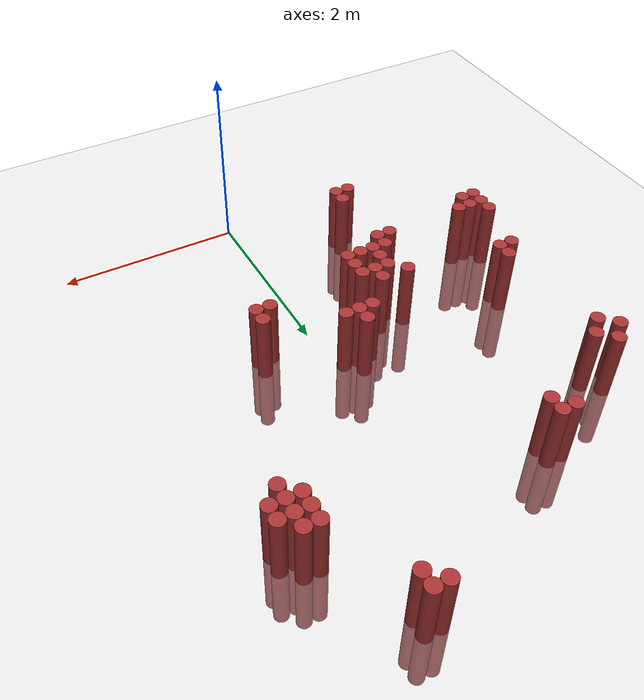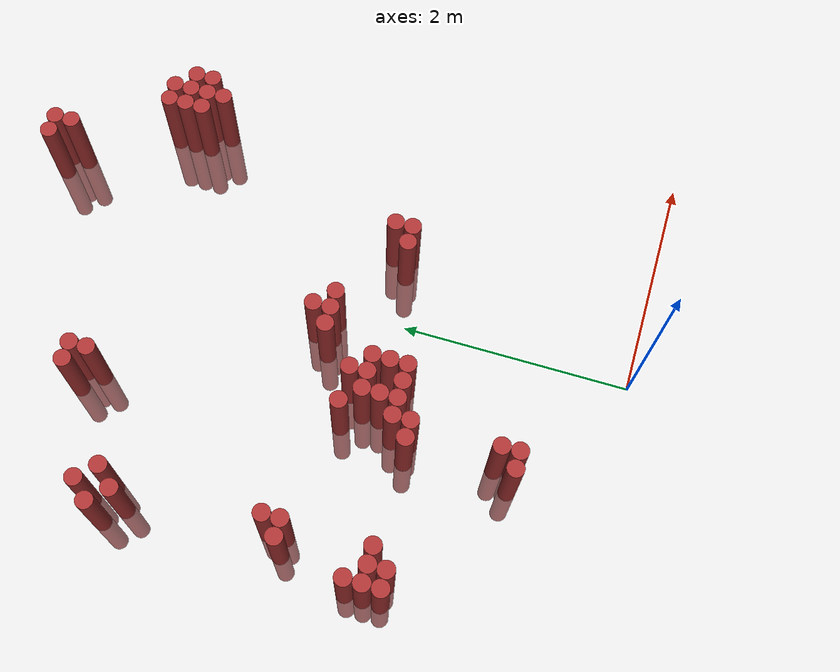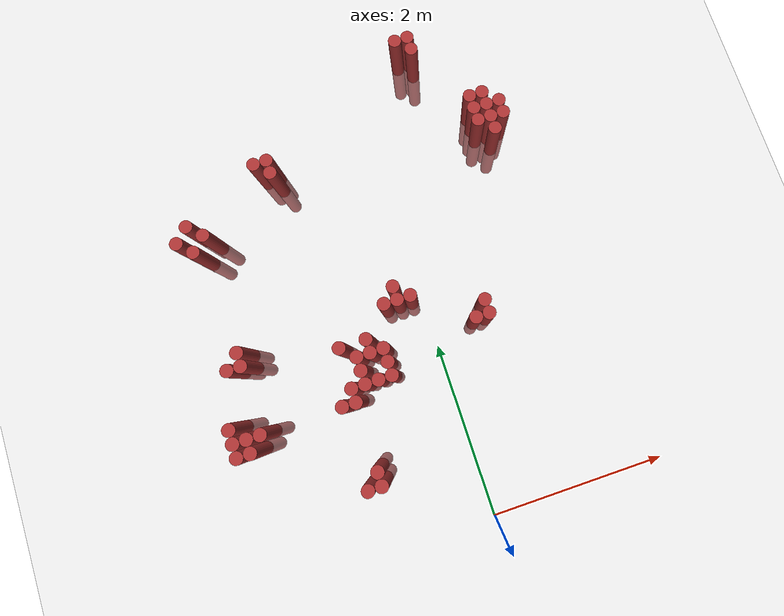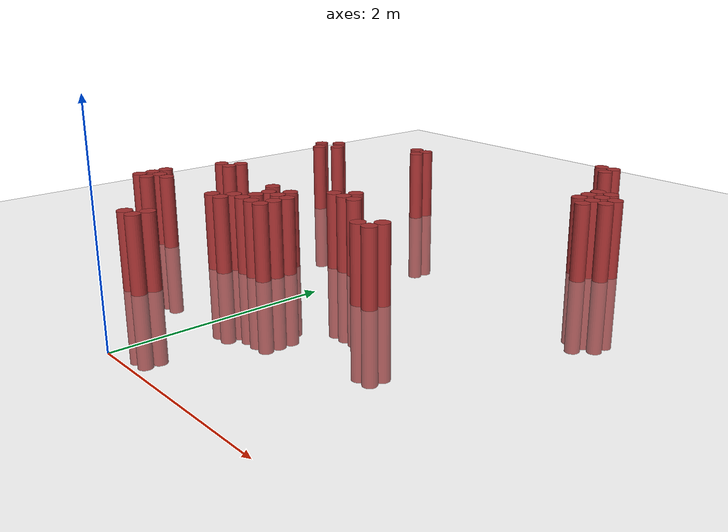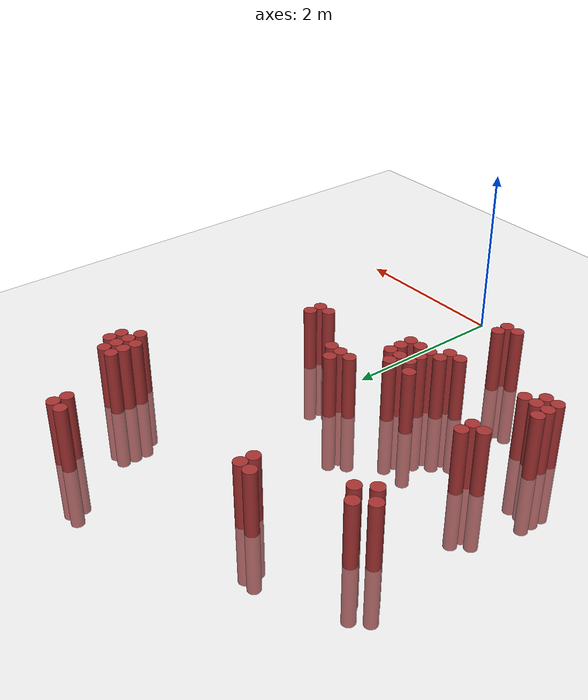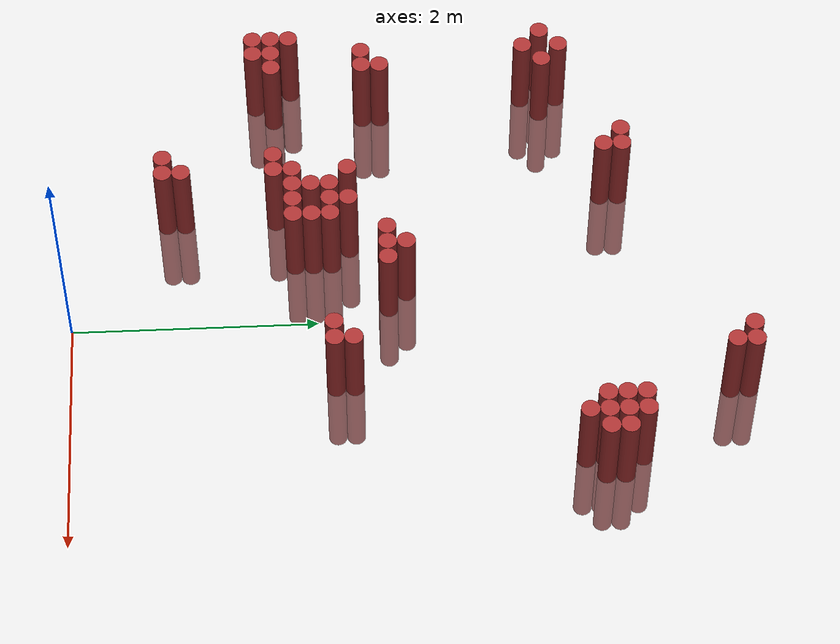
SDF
<sdf version="1.6">
 <world name="default">
  <model name="ground_plane">
   <static>1</static>
   <link name="link">
    <collision name="collision">
     <geometry><plane><normal>0 0 1</normal><size>100 100</size></plane></geometry>
     <surface><friction><ode><mu>100</mu><mu2>50</mu2></ode></friction></surface>
    </collision>
    <visual name="visual">
     <cast_shadows>0</cast_shadows>
     <geometry><plane><normal>0 0 1</normal><size>100 100</size></plane></geometry>
     <material>
      <script><uri>file://media/materials/scripts/gazebo.material</uri><name>Gazebo/Grey</name></script>
     </material>
    </visual>
   </link>
  </model>
  <model name="unit_cylinder_301">
   <static>1</static>
   <pose>-2.375000 1.525000 0.000000 0.000000 0.000000 0.000000</pose>
   <link name="link">
    <inertial>
     <mass>1</mass>
     <inertia><ixx>0.145833</ixx><ixy>0</ixy><ixz>0</ixz><iyy>0.145833</iyy><iyz>0</iyz><izz>0.125</izz></inertia>
    </inertial>
    <collision name="collision">
     <geometry><cylinder><radius>0.075000</radius><length>1.5</length></cylinder></geometry>
    </collision>
    <visual name="visual">
     <geometry><cylinder><radius>0.075000</radius><length>1.5</length></cylinder></geometry>
     <material>
      <ambient>0.648000 0.192000 0.192000 1</ambient>
      <diffuse>0.648000 0.192000 0.192000 1</diffuse>
     </material>
     <material>
      <script><name>Gazebo/Grey</name><uri>file://media/materials/scripts/gazebo.material</uri></script>
     </material>
    </visual>
   </link>
  </model>
  <model name="unit_cylinder_302">
   <static>1</static>
   <pose>-2.375000 1.675000 0.000000 0.000000 0.000000 0.000000</pose>
   <link name="link">
    <inertial>
     <mass>1</mass>
     <inertia><ixx>0.145833</ixx><ixy>0</ixy><ixz>0</ixz><iyy>0.145833</iyy><iyz>0</iyz><izz>0.125</izz></inertia>
    </inertial>
    <collision name="collision">
     <geometry><cylinder><radius>0.075000</radius><length>1.5</length></cylinder></geometry>
    </collision>
    <visual name="visual">
     <geometry><cylinder><radius>0.075000</radius><length>1.5</length></cylinder></geometry>
     <material>
      <ambient>0.648000 0.192000 0.192000 1</ambient>
      <diffuse>0.648000 0.192000 0.192000 1</diffuse>
     </material>
     <material>
      <script><name>Gazebo/Grey</name><uri>file://media/materials/scripts/gazebo.material</uri></script>
     </material>
    </visual>
   </link>
  </model>
  <model name="unit_cylinder_303">
   <static>1</static>
   <pose>-2.375000 1.825000 0.000000 0.000000 0.000000 0.000000</pose>
   <link name="link">
    <inertial>
     <mass>1</mass>
     <inertia><ixx>0.145833</ixx><ixy>0</ixy><ixz>0</ixz><iyy>0.145833</iyy><iyz>0</iyz><izz>0.125</izz></inertia>
    </inertial>
    <collision name="collision">
     <geometry><cylinder><radius>0.075000</radius><length>1.5</length></cylinder></geometry>
    </collision>
    <visual name="visual">
     <geometry><cylinder><radius>0.075000</radius><length>1.5</length></cylinder></geometry>
     <material>
      <ambient>0.648000 0.192000 0.192000 1</ambient>
      <diffuse>0.648000 0.192000 0.192000 1</diffuse>
     </material>
     <material>
      <script><name>Gazebo/Grey</name><uri>file://media/materials/scripts/gazebo.material</uri></script>
     </material>
    </visual>
   </link>
  </model>
  <model name="unit_cylinder_304">
   <static>1</static>
   <pose>-2.375000 3.925000 0.000000 0.000000 0.000000 0.000000</pose>
   <link name="link">
    <inertial>
     <mass>1</mass>
     <inertia><ixx>0.145833</ixx><ixy>0</ixy><ixz>0</ixz><iyy>0.145833</iyy><iyz>0</iyz><izz>0.125</izz></inertia>
    </inertial>
    <collision name="collision">
     <geometry><cylinder><radius>0.075000</radius><length>1.5</length></cylinder></geometry>
    </collision>
    <visual name="visual">
     <geometry><cylinder><radius>0.075000</radius><length>1.5</length></cylinder></geometry>
     <material>
      <ambient>0.648000 0.192000 0.192000 1</ambient>
      <diffuse>0.648000 0.192000 0.192000 1</diffuse>
     </material>
     <material>
      <script><name>Gazebo/Grey</name><uri>file://media/materials/scripts/gazebo.material</uri></script>
     </material>
    </visual>
   </link>
  </model>
  <model name="unit_cylinder_307">
   <static>1</static>
   <pose>-2.225000 1.525000 0.000000 0.000000 0.000000 0.000000</pose>
   <link name="link">
    <inertial>
     <mass>1</mass>
     <inertia><ixx>0.145833</ixx><ixy>0</ixy><ixz>0</ixz><iyy>0.145833</iyy><iyz>0</iyz><izz>0.125</izz></inertia>
    </inertial>
    <collision name="collision">
     <geometry><cylinder><radius>0.075000</radius><length>1.5</length></cylinder></geometry>
    </collision>
    <visual name="visual">
     <geometry><cylinder><radius>0.075000</radius><length>1.5</length></cylinder></geometry>
     <material>
      <ambient>0.648000 0.192000 0.192000 1</ambient>
      <diffuse>0.648000 0.192000 0.192000 1</diffuse>
     </material>
     <material>
      <script><name>Gazebo/Grey</name><uri>file://media/materials/scripts/gazebo.material</uri></script>
     </material>
    </visual>
   </link>
  </model>
  <model name="unit_cylinder_308">
   <static>1</static>
   <pose>-2.225000 1.675000 0.000000 0.000000 0.000000 0.000000</pose>
   <link name="link">
    <inertial>
     <mass>1</mass>
     <inertia><ixx>0.145833</ixx><ixy>0</ixy><ixz>0</ixz><iyy>0.145833</iyy><iyz>0</iyz><izz>0.125</izz></inertia>
    </inertial>
    <collision name="collision">
     <geometry><cylinder><radius>0.075000</radius><length>1.5</length></cylinder></geometry>
    </collision>
    <visual name="visual">
     <geometry><cylinder><radius>0.075000</radius><length>1.5</length></cylinder></geometry>
     <material>
      <ambient>0.648000 0.192000 0.192000 1</ambient>
      <diffuse>0.648000 0.192000 0.192000 1</diffuse>
     </material>
     <material>
      <script><name>Gazebo/Grey</name><uri>file://media/materials/scripts/gazebo.material</uri></script>
     </material>
    </visual>
   </link>
  </model>
  <model name="unit_cylinder_309">
   <static>1</static>
   <pose>-2.225000 2.425000 0.000000 0.000000 0.000000 0.000000</pose>
   <link name="link">
    <inertial>
     <mass>1</mass>
     <inertia><ixx>0.145833</ixx><ixy>0</ixy><ixz>0</ixz><iyy>0.145833</iyy><iyz>0</iyz><izz>0.125</izz></inertia>
    </inertial>
    <collision name="collision">
     <geometry><cylinder><radius>0.075000</radius><length>1.5</length></cylinder></geometry>
    </collision>
    <visual name="visual">
     <geometry><cylinder><radius>0.075000</radius><length>1.5</length></cylinder></geometry>
     <material>
      <ambient>0.648000 0.192000 0.192000 1</ambient>
      <diffuse>0.648000 0.192000 0.192000 1</diffuse>
     </material>
     <material>
      <script><name>Gazebo/Grey</name><uri>file://media/materials/scripts/gazebo.material</uri></script>
     </material>
    </visual>
   </link>
  </model>
  <model name="unit_cylinder_310">
   <static>1</static>
   <pose>-2.225000 3.775000 0.000000 0.000000 0.000000 0.000000</pose>
   <link name="link">
    <inertial>
     <mass>1</mass>
     <inertia><ixx>0.145833</ixx><ixy>0</ixy><ixz>0</ixz><iyy>0.145833</iyy><iyz>0</iyz><izz>0.125</izz></inertia>
    </inertial>
    <collision name="collision">
     <geometry><cylinder><radius>0.075000</radius><length>1.5</length></cylinder></geometry>
    </collision>
    <visual name="visual">
     <geometry><cylinder><radius>0.075000</radius><length>1.5</length></cylinder></geometry>
     <material>
      <ambient>0.648000 0.192000 0.192000 1</ambient>
      <diffuse>0.648000 0.192000 0.192000 1</diffuse>
     </material>
     <material>
      <script><name>Gazebo/Grey</name><uri>file://media/materials/scripts/gazebo.material</uri></script>
     </material>
    </visual>
   </link>
  </model>
  <model name="unit_cylinder_311">
   <static>1</static>
   <pose>-2.225000 4.075000 0.000000 0.000000 0.000000 0.000000</pose>
   <link name="link">
    <inertial>
     <mass>1</mass>
     <inertia><ixx>0.145833</ixx><ixy>0</ixy><ixz>0</ixz><iyy>0.145833</iyy><iyz>0</iyz><izz>0.125</izz></inertia>
    </inertial>
    <collision name="collision">
     <geometry><cylinder><radius>0.075000</radius><length>1.5</length></cylinder></geometry>
    </collision>
    <visual name="visual">
     <geometry><cylinder><radius>0.075000</radius><length>1.5</length></cylinder></geometry>
     <material>
      <ambient>0.648000 0.192000 0.192000 1</ambient>
      <diffuse>0.648000 0.192000 0.192000 1</diffuse>
     </material>
     <material>
      <script><name>Gazebo/Grey</name><uri>file://media/materials/scripts/gazebo.material</uri></script>
     </material>
    </visual>
   </link>
  </model>
  <model name="unit_cylinder_316">
   <static>1</static>
   <pose>-2.075000 1.675000 0.000000 0.000000 0.000000 0.000000</pose>
   <link name="link">
    <inertial>
     <mass>1</mass>
     <inertia><ixx>0.145833</ixx><ixy>0</ixy><ixz>0</ixz><iyy>0.145833</iyy><iyz>0</iyz><izz>0.125</izz></inertia>
    </inertial>
    <collision name="collision">
     <geometry><cylinder><radius>0.075000</radius><length>1.5</length></cylinder></geometry>
    </collision>
    <visual name="visual">
     <geometry><cylinder><radius>0.075000</radius><length>1.5</length></cylinder></geometry>
     <material>
      <ambient>0.648000 0.192000 0.192000 1</ambient>
      <diffuse>0.648000 0.192000 0.192000 1</diffuse>
     </material>
     <material>
      <script><name>Gazebo/Grey</name><uri>file://media/materials/scripts/gazebo.material</uri></script>
     </material>
    </visual>
   </link>
  </model>
  <model name="unit_cylinder_317">
   <static>1</static>
   <pose>-2.075000 2.425000 0.000000 0.000000 0.000000 0.000000</pose>
   <link name="link">
    <inertial>
     <mass>1</mass>
     <inertia><ixx>0.145833</ixx><ixy>0</ixy><ixz>0</ixz><iyy>0.145833</iyy><iyz>0</iyz><izz>0.125</izz></inertia>
    </inertial>
    <collision name="collision">
     <geometry><cylinder><radius>0.075000</radius><length>1.5</length></cylinder></geometry>
    </collision>
    <visual name="visual">
     <geometry><cylinder><radius>0.075000</radius><length>1.5</length></cylinder></geometry>
     <material>
      <ambient>0.648000 0.192000 0.192000 1</ambient>
      <diffuse>0.648000 0.192000 0.192000 1</diffuse>
     </material>
     <material>
      <script><name>Gazebo/Grey</name><uri>file://media/materials/scripts/gazebo.material</uri></script>
     </material>
    </visual>
   </link>
  </model>
  <model name="unit_cylinder_318">
   <static>1</static>
   <pose>-2.075000 2.575000 0.000000 0.000000 0.000000 0.000000</pose>
   <link name="link">
    <inertial>
     <mass>1</mass>
     <inertia><ixx>0.145833</ixx><ixy>0</ixy><ixz>0</ixz><iyy>0.145833</iyy><iyz>0</iyz><izz>0.125</izz></inertia>
    </inertial>
    <collision name="collision">
     <geometry><cylinder><radius>0.075000</radius><length>1.5</length></cylinder></geometry>
    </collision>
    <visual name="visual">
     <geometry><cylinder><radius>0.075000</radius><length>1.5</length></cylinder></geometry>
     <material>
      <ambient>0.648000 0.192000 0.192000 1</ambient>
      <diffuse>0.648000 0.192000 0.192000 1</diffuse>
     </material>
     <material>
      <script><name>Gazebo/Grey</name><uri>file://media/materials/scripts/gazebo.material</uri></script>
     </material>
    </visual>
   </link>
  </model>
  <model name="unit_cylinder_319">
   <static>1</static>
   <pose>-2.075000 3.925000 0.000000 0.000000 0.000000 0.000000</pose>
   <link name="link">
    <inertial>
     <mass>1</mass>
     <inertia><ixx>0.145833</ixx><ixy>0</ixy><ixz>0</ixz><iyy>0.145833</iyy><iyz>0</iyz><izz>0.125</izz></inertia>
    </inertial>
    <collision name="collision">
     <geometry><cylinder><radius>0.075000</radius><length>1.5</length></cylinder></geometry>
    </collision>
    <visual name="visual">
     <geometry><cylinder><radius>0.075000</radius><length>1.5</length></cylinder></geometry>
     <material>
      <ambient>0.648000 0.192000 0.192000 1</ambient>
      <diffuse>0.648000 0.192000 0.192000 1</diffuse>
     </material>
     <material>
      <script><name>Gazebo/Grey</name><uri>file://media/materials/scripts/gazebo.material</uri></script>
     </material>
    </visual>
   </link>
  </model>
  <model name="unit_cylinder_342">
   <static>1</static>
   <pose>-1.325000 4.525000 0.000000 0.000000 0.000000 0.000000</pose>
   <link name="link">
    <inertial>
     <mass>1</mass>
     <inertia><ixx>0.145833</ixx><ixy>0</ixy><ixz>0</ixz><iyy>0.145833</iyy><iyz>0</iyz><izz>0.125</izz></inertia>
    </inertial>
    <collision name="collision">
     <geometry><cylinder><radius>0.075000</radius><length>1.5</length></cylinder></geometry>
    </collision>
    <visual name="visual">
     <geometry><cylinder><radius>0.075000</radius><length>1.5</length></cylinder></geometry>
     <material>
      <ambient>0.648000 0.192000 0.192000 1</ambient>
      <diffuse>0.648000 0.192000 0.192000 1</diffuse>
     </material>
     <material>
      <script><name>Gazebo/Grey</name><uri>file://media/materials/scripts/gazebo.material</uri></script>
     </material>
    </visual>
   </link>
  </model>
  <model name="unit_cylinder_350">
   <static>1</static>
   <pose>-1.175000 0.775000 0.000000 0.000000 0.000000 0.000000</pose>
   <link name="link">
    <inertial>
     <mass>1</mass>
     <inertia><ixx>0.145833</ixx><ixy>0</ixy><ixz>0</ixz><iyy>0.145833</iyy><iyz>0</iyz><izz>0.125</izz></inertia>
    </inertial>
    <collision name="collision">
     <geometry><cylinder><radius>0.075000</radius><length>1.5</length></cylinder></geometry>
    </collision>
    <visual name="visual">
     <geometry><cylinder><radius>0.075000</radius><length>1.5</length></cylinder></geometry>
     <material>
      <ambient>0.648000 0.192000 0.192000 1</ambient>
      <diffuse>0.648000 0.192000 0.192000 1</diffuse>
     </material>
     <material>
      <script><name>Gazebo/Grey</name><uri>file://media/materials/scripts/gazebo.material</uri></script>
     </material>
    </visual>
   </link>
  </model>
  <model name="unit_cylinder_351">
   <static>1</static>
   <pose>-1.175000 1.675000 0.000000 0.000000 0.000000 0.000000</pose>
   <link name="link">
    <inertial>
     <mass>1</mass>
     <inertia><ixx>0.145833</ixx><ixy>0</ixy><ixz>0</ixz><iyy>0.145833</iyy><iyz>0</iyz><izz>0.125</izz></inertia>
    </inertial>
    <collision name="collision">
     <geometry><cylinder><radius>0.075000</radius><length>1.5</length></cylinder></geometry>
    </collision>
    <visual name="visual">
     <geometry><cylinder><radius>0.075000</radius><length>1.5</length></cylinder></geometry>
     <material>
      <ambient>0.648000 0.192000 0.192000 1</ambient>
      <diffuse>0.648000 0.192000 0.192000 1</diffuse>
     </material>
     <material>
      <script><name>Gazebo/Grey</name><uri>file://media/materials/scripts/gazebo.material</uri></script>
     </material>
    </visual>
   </link>
  </model>
  <model name="unit_cylinder_352">
   <static>1</static>
   <pose>-1.175000 4.375000 0.000000 0.000000 0.000000 0.000000</pose>
   <link name="link">
    <inertial>
     <mass>1</mass>
     <inertia><ixx>0.145833</ixx><ixy>0</ixy><ixz>0</ixz><iyy>0.145833</iyy><iyz>0</iyz><izz>0.125</izz></inertia>
    </inertial>
    <collision name="collision">
     <geometry><cylinder><radius>0.075000</radius><length>1.5</length></cylinder></geometry>
    </collision>
    <visual name="visual">
     <geometry><cylinder><radius>0.075000</radius><length>1.5</length></cylinder></geometry>
     <material>
      <ambient>0.648000 0.192000 0.192000 1</ambient>
      <diffuse>0.648000 0.192000 0.192000 1</diffuse>
     </material>
     <material>
      <script><name>Gazebo/Grey</name><uri>file://media/materials/scripts/gazebo.material</uri></script>
     </material>
    </visual>
   </link>
  </model>
  <model name="unit_cylinder_353">
   <static>1</static>
   <pose>-1.175000 4.525000 0.000000 0.000000 0.000000 0.000000</pose>
   <link name="link">
    <inertial>
     <mass>1</mass>
     <inertia><ixx>0.145833</ixx><ixy>0</ixy><ixz>0</ixz><iyy>0.145833</iyy><iyz>0</iyz><izz>0.125</izz></inertia>
    </inertial>
    <collision name="collision">
     <geometry><cylinder><radius>0.075000</radius><length>1.5</length></cylinder></geometry>
    </collision>
    <visual name="visual">
     <geometry><cylinder><radius>0.075000</radius><length>1.5</length></cylinder></geometry>
     <material>
      <ambient>0.648000 0.192000 0.192000 1</ambient>
      <diffuse>0.648000 0.192000 0.192000 1</diffuse>
     </material>
     <material>
      <script><name>Gazebo/Grey</name><uri>file://media/materials/scripts/gazebo.material</uri></script>
     </material>
    </visual>
   </link>
  </model>
  <model name="unit_cylinder_358">
   <static>1</static>
   <pose>-1.025000 0.775000 0.000000 0.000000 0.000000 0.000000</pose>
   <link name="link">
    <inertial>
     <mass>1</mass>
     <inertia><ixx>0.145833</ixx><ixy>0</ixy><ixz>0</ixz><iyy>0.145833</iyy><iyz>0</iyz><izz>0.125</izz></inertia>
    </inertial>
    <collision name="collision">
     <geometry><cylinder><radius>0.075000</radius><length>1.5</length></cylinder></geometry>
    </collision>
    <visual name="visual">
     <geometry><cylinder><radius>0.075000</radius><length>1.5</length></cylinder></geometry>
     <material>
      <ambient>0.648000 0.192000 0.192000 1</ambient>
      <diffuse>0.648000 0.192000 0.192000 1</diffuse>
     </material>
     <material>
      <script><name>Gazebo/Grey</name><uri>file://media/materials/scripts/gazebo.material</uri></script>
     </material>
    </visual>
   </link>
  </model>
  <model name="unit_cylinder_359">
   <static>1</static>
   <pose>-1.025000 0.925000 0.000000 0.000000 0.000000 0.000000</pose>
   <link name="link">
    <inertial>
     <mass>1</mass>
     <inertia><ixx>0.145833</ixx><ixy>0</ixy><ixz>0</ixz><iyy>0.145833</iyy><iyz>0</iyz><izz>0.125</izz></inertia>
    </inertial>
    <collision name="collision">
     <geometry><cylinder><radius>0.075000</radius><length>1.5</length></cylinder></geometry>
    </collision>
    <visual name="visual">
     <geometry><cylinder><radius>0.075000</radius><length>1.5</length></cylinder></geometry>
     <material>
      <ambient>0.648000 0.192000 0.192000 1</ambient>
      <diffuse>0.648000 0.192000 0.192000 1</diffuse>
     </material>
     <material>
      <script><name>Gazebo/Grey</name><uri>file://media/materials/scripts/gazebo.material</uri></script>
     </material>
    </visual>
   </link>
  </model>
  <model name="unit_cylinder_360">
   <static>1</static>
   <pose>-1.025000 1.675000 0.000000 0.000000 0.000000 0.000000</pose>
   <link name="link">
    <inertial>
     <mass>1</mass>
     <inertia><ixx>0.145833</ixx><ixy>0</ixy><ixz>0</ixz><iyy>0.145833</iyy><iyz>0</iyz><izz>0.125</izz></inertia>
    </inertial>
    <collision name="collision">
     <geometry><cylinder><radius>0.075000</radius><length>1.5</length></cylinder></geometry>
    </collision>
    <visual name="visual">
     <geometry><cylinder><radius>0.075000</radius><length>1.5</length></cylinder></geometry>
     <material>
      <ambient>0.648000 0.192000 0.192000 1</ambient>
      <diffuse>0.648000 0.192000 0.192000 1</diffuse>
     </material>
     <material>
      <script><name>Gazebo/Grey</name><uri>file://media/materials/scripts/gazebo.material</uri></script>
     </material>
    </visual>
   </link>
  </model>
  <model name="unit_cylinder_361">
   <static>1</static>
   <pose>-1.025000 1.825000 0.000000 0.000000 0.000000 0.000000</pose>
   <link name="link">
    <inertial>
     <mass>1</mass>
     <inertia><ixx>0.145833</ixx><ixy>0</ixy><ixz>0</ixz><iyy>0.145833</iyy><iyz>0</iyz><izz>0.125</izz></inertia>
    </inertial>
    <collision name="collision">
     <geometry><cylinder><radius>0.075000</radius><length>1.5</length></cylinder></geometry>
    </collision>
    <visual name="visual">
     <geometry><cylinder><radius>0.075000</radius><length>1.5</length></cylinder></geometry>
     <material>
      <ambient>0.648000 0.192000 0.192000 1</ambient>
      <diffuse>0.648000 0.192000 0.192000 1</diffuse>
     </material>
     <material>
      <script><name>Gazebo/Grey</name><uri>file://media/materials/scripts/gazebo.material</uri></script>
     </material>
    </visual>
   </link>
  </model>
  <model name="unit_cylinder_362">
   <static>1</static>
   <pose>-1.025000 2.275000 0.000000 0.000000 0.000000 0.000000</pose>
   <link name="link">
    <inertial>
     <mass>1</mass>
     <inertia><ixx>0.145833</ixx><ixy>0</ixy><ixz>0</ixz><iyy>0.145833</iyy><iyz>0</iyz><izz>0.125</izz></inertia>
    </inertial>
    <collision name="collision">
     <geometry><cylinder><radius>0.075000</radius><length>1.5</length></cylinder></geometry>
    </collision>
    <visual name="visual">
     <geometry><cylinder><radius>0.075000</radius><length>1.5</length></cylinder></geometry>
     <material>
      <ambient>0.648000 0.192000 0.192000 1</ambient>
      <diffuse>0.648000 0.192000 0.192000 1</diffuse>
     </material>
     <material>
      <script><name>Gazebo/Grey</name><uri>file://media/materials/scripts/gazebo.material</uri></script>
     </material>
    </visual>
   </link>
  </model>
  <model name="unit_cylinder_366">
   <static>1</static>
   <pose>-0.875000 1.825000 0.000000 0.000000 0.000000 0.000000</pose>
   <link name="link">
    <inertial>
     <mass>1</mass>
     <inertia><ixx>0.145833</ixx><ixy>0</ixy><ixz>0</ixz><iyy>0.145833</iyy><iyz>0</iyz><izz>0.125</izz></inertia>
    </inertial>
    <collision name="collision">
     <geometry><cylinder><radius>0.075000</radius><length>1.5</length></cylinder></geometry>
    </collision>
    <visual name="visual">
     <geometry><cylinder><radius>0.075000</radius><length>1.5</length></cylinder></geometry>
     <material>
      <ambient>0.648000 0.192000 0.192000 1</ambient>
      <diffuse>0.648000 0.192000 0.192000 1</diffuse>
     </material>
     <material>
      <script><name>Gazebo/Grey</name><uri>file://media/materials/scripts/gazebo.material</uri></script>
     </material>
    </visual>
   </link>
  </model>
  <model name="unit_cylinder_367">
   <static>1</static>
   <pose>-0.875000 1.975000 0.000000 0.000000 0.000000 0.000000</pose>
   <link name="link">
    <inertial>
     <mass>1</mass>
     <inertia><ixx>0.145833</ixx><ixy>0</ixy><ixz>0</ixz><iyy>0.145833</iyy><iyz>0</iyz><izz>0.125</izz></inertia>
    </inertial>
    <collision name="collision">
     <geometry><cylinder><radius>0.075000</radius><length>1.5</length></cylinder></geometry>
    </collision>
    <visual name="visual">
     <geometry><cylinder><radius>0.075000</radius><length>1.5</length></cylinder></geometry>
     <material>
      <ambient>0.648000 0.192000 0.192000 1</ambient>
      <diffuse>0.648000 0.192000 0.192000 1</diffuse>
     </material>
     <material>
      <script><name>Gazebo/Grey</name><uri>file://media/materials/scripts/gazebo.material</uri></script>
     </material>
    </visual>
   </link>
  </model>
  <model name="unit_cylinder_368">
   <static>1</static>
   <pose>-0.875000 2.125000 0.000000 0.000000 0.000000 0.000000</pose>
   <link name="link">
    <inertial>
     <mass>1</mass>
     <inertia><ixx>0.145833</ixx><ixy>0</ixy><ixz>0</ixz><iyy>0.145833</iyy><iyz>0</iyz><izz>0.125</izz></inertia>
    </inertial>
    <collision name="collision">
     <geometry><cylinder><radius>0.075000</radius><length>1.5</length></cylinder></geometry>
    </collision>
    <visual name="visual">
     <geometry><cylinder><radius>0.075000</radius><length>1.5</length></cylinder></geometry>
     <material>
      <ambient>0.648000 0.192000 0.192000 1</ambient>
      <diffuse>0.648000 0.192000 0.192000 1</diffuse>
     </material>
     <material>
      <script><name>Gazebo/Grey</name><uri>file://media/materials/scripts/gazebo.material</uri></script>
     </material>
    </visual>
   </link>
  </model>
  <model name="unit_cylinder_370">
   <static>1</static>
   <pose>-0.725000 1.825000 0.000000 0.000000 0.000000 0.000000</pose>
   <link name="link">
    <inertial>
     <mass>1</mass>
     <inertia><ixx>0.145833</ixx><ixy>0</ixy><ixz>0</ixz><iyy>0.145833</iyy><iyz>0</iyz><izz>0.125</izz></inertia>
    </inertial>
    <collision name="collision">
     <geometry><cylinder><radius>0.075000</radius><length>1.5</length></cylinder></geometry>
    </collision>
    <visual name="visual">
     <geometry><cylinder><radius>0.075000</radius><length>1.5</length></cylinder></geometry>
     <material>
      <ambient>0.648000 0.192000 0.192000 1</ambient>
      <diffuse>0.648000 0.192000 0.192000 1</diffuse>
     </material>
     <material>
      <script><name>Gazebo/Grey</name><uri>file://media/materials/scripts/gazebo.material</uri></script>
     </material>
    </visual>
   </link>
  </model>
  <model name="unit_cylinder_371">
   <static>1</static>
   <pose>-0.725000 2.125000 0.000000 0.000000 0.000000 0.000000</pose>
   <link name="link">
    <inertial>
     <mass>1</mass>
     <inertia><ixx>0.145833</ixx><ixy>0</ixy><ixz>0</ixz><iyy>0.145833</iyy><iyz>0</iyz><izz>0.125</izz></inertia>
    </inertial>
    <collision name="collision">
     <geometry><cylinder><radius>0.075000</radius><length>1.5</length></cylinder></geometry>
    </collision>
    <visual name="visual">
     <geometry><cylinder><radius>0.075000</radius><length>1.5</length></cylinder></geometry>
     <material>
      <ambient>0.648000 0.192000 0.192000 1</ambient>
      <diffuse>0.648000 0.192000 0.192000 1</diffuse>
     </material>
     <material>
      <script><name>Gazebo/Grey</name><uri>file://media/materials/scripts/gazebo.material</uri></script>
     </material>
    </visual>
   </link>
  </model>
  <model name="unit_cylinder_372">
   <static>1</static>
   <pose>-0.725000 2.275000 0.000000 0.000000 0.000000 0.000000</pose>
   <link name="link">
    <inertial>
     <mass>1</mass>
     <inertia><ixx>0.145833</ixx><ixy>0</ixy><ixz>0</ixz><iyy>0.145833</iyy><iyz>0</iyz><izz>0.125</izz></inertia>
    </inertial>
    <collision name="collision">
     <geometry><cylinder><radius>0.075000</radius><length>1.5</length></cylinder></geometry>
    </collision>
    <visual name="visual">
     <geometry><cylinder><radius>0.075000</radius><length>1.5</length></cylinder></geometry>
     <material>
      <ambient>0.648000 0.192000 0.192000 1</ambient>
      <diffuse>0.648000 0.192000 0.192000 1</diffuse>
     </material>
     <material>
      <script><name>Gazebo/Grey</name><uri>file://media/materials/scripts/gazebo.material</uri></script>
     </material>
    </visual>
   </link>
  </model>
  <model name="unit_cylinder_375">
   <static>1</static>
   <pose>-0.575000 1.825000 0.000000 0.000000 0.000000 0.000000</pose>
   <link name="link">
    <inertial>
     <mass>1</mass>
     <inertia><ixx>0.145833</ixx><ixy>0</ixy><ixz>0</ixz><iyy>0.145833</iyy><iyz>0</iyz><izz>0.125</izz></inertia>
    </inertial>
    <collision name="collision">
     <geometry><cylinder><radius>0.075000</radius><length>1.5</length></cylinder></geometry>
    </collision>
    <visual name="visual">
     <geometry><cylinder><radius>0.075000</radius><length>1.5</length></cylinder></geometry>
     <material>
      <ambient>0.648000 0.192000 0.192000 1</ambient>
      <diffuse>0.648000 0.192000 0.192000 1</diffuse>
     </material>
     <material>
      <script><name>Gazebo/Grey</name><uri>file://media/materials/scripts/gazebo.material</uri></script>
     </material>
    </visual>
   </link>
  </model>
  <model name="unit_cylinder_376">
   <static>1</static>
   <pose>-0.575000 1.975000 0.000000 0.000000 0.000000 0.000000</pose>
   <link name="link">
    <inertial>
     <mass>1</mass>
     <inertia><ixx>0.145833</ixx><ixy>0</ixy><ixz>0</ixz><iyy>0.145833</iyy><iyz>0</iyz><izz>0.125</izz></inertia>
    </inertial>
    <collision name="collision">
     <geometry><cylinder><radius>0.075000</radius><length>1.5</length></cylinder></geometry>
    </collision>
    <visual name="visual">
     <geometry><cylinder><radius>0.075000</radius><length>1.5</length></cylinder></geometry>
     <material>
      <ambient>0.648000 0.192000 0.192000 1</ambient>
      <diffuse>0.648000 0.192000 0.192000 1</diffuse>
     </material>
     <material>
      <script><name>Gazebo/Grey</name><uri>file://media/materials/scripts/gazebo.material</uri></script>
     </material>
    </visual>
   </link>
  </model>
  <model name="unit_cylinder_377">
   <static>1</static>
   <pose>-0.575000 2.125000 0.000000 0.000000 0.000000 0.000000</pose>
   <link name="link">
    <inertial>
     <mass>1</mass>
     <inertia><ixx>0.145833</ixx><ixy>0</ixy><ixz>0</ixz><iyy>0.145833</iyy><iyz>0</iyz><izz>0.125</izz></inertia>
    </inertial>
    <collision name="collision">
     <geometry><cylinder><radius>0.075000</radius><length>1.5</length></cylinder></geometry>
    </collision>
    <visual name="visual">
     <geometry><cylinder><radius>0.075000</radius><length>1.5</length></cylinder></geometry>
     <material>
      <ambient>0.648000 0.192000 0.192000 1</ambient>
      <diffuse>0.648000 0.192000 0.192000 1</diffuse>
     </material>
     <material>
      <script><name>Gazebo/Grey</name><uri>file://media/materials/scripts/gazebo.material</uri></script>
     </material>
    </visual>
   </link>
  </model>
  <model name="unit_cylinder_381">
   <static>1</static>
   <pose>-0.425000 2.575000 0.000000 0.000000 0.000000 0.000000</pose>
   <link name="link">
    <inertial>
     <mass>1</mass>
     <inertia><ixx>0.145833</ixx><ixy>0</ixy><ixz>0</ixz><iyy>0.145833</iyy><iyz>0</iyz><izz>0.125</izz></inertia>
    </inertial>
    <collision name="collision">
     <geometry><cylinder><radius>0.075000</radius><length>1.5</length></cylinder></geometry>
    </collision>
    <visual name="visual">
     <geometry><cylinder><radius>0.075000</radius><length>1.5</length></cylinder></geometry>
     <material>
      <ambient>0.648000 0.192000 0.192000 1</ambient>
      <diffuse>0.648000 0.192000 0.192000 1</diffuse>
     </material>
     <material>
      <script><name>Gazebo/Grey</name><uri>file://media/materials/scripts/gazebo.material</uri></script>
     </material>
    </visual>
   </link>
  </model>
  <model name="unit_cylinder_382">
   <static>1</static>
   <pose>-0.275000 2.575000 0.000000 0.000000 0.000000 0.000000</pose>
   <link name="link">
    <inertial>
     <mass>1</mass>
     <inertia><ixx>0.145833</ixx><ixy>0</ixy><ixz>0</ixz><iyy>0.145833</iyy><iyz>0</iyz><izz>0.125</izz></inertia>
    </inertial>
    <collision name="collision">
     <geometry><cylinder><radius>0.075000</radius><length>1.5</length></cylinder></geometry>
    </collision>
    <visual name="visual">
     <geometry><cylinder><radius>0.075000</radius><length>1.5</length></cylinder></geometry>
     <material>
      <ambient>0.648000 0.192000 0.192000 1</ambient>
      <diffuse>0.648000 0.192000 0.192000 1</diffuse>
     </material>
     <material>
      <script><name>Gazebo/Grey</name><uri>file://media/materials/scripts/gazebo.material</uri></script>
     </material>
    </visual>
   </link>
  </model>
  <model name="unit_cylinder_383">
   <static>1</static>
   <pose>-0.275000 2.725000 0.000000 0.000000 0.000000 0.000000</pose>
   <link name="link">
    <inertial>
     <mass>1</mass>
     <inertia><ixx>0.145833</ixx><ixy>0</ixy><ixz>0</ixz><iyy>0.145833</iyy><iyz>0</iyz><izz>0.125</izz></inertia>
    </inertial>
    <collision name="collision">
     <geometry><cylinder><radius>0.075000</radius><length>1.5</length></cylinder></geometry>
    </collision>
    <visual name="visual">
     <geometry><cylinder><radius>0.075000</radius><length>1.5</length></cylinder></geometry>
     <material>
      <ambient>0.648000 0.192000 0.192000 1</ambient>
      <diffuse>0.648000 0.192000 0.192000 1</diffuse>
     </material>
     <material>
      <script><name>Gazebo/Grey</name><uri>file://media/materials/scripts/gazebo.material</uri></script>
     </material>
    </visual>
   </link>
  </model>
  <model name="unit_cylinder_386">
   <static>1</static>
   <pose>-0.125000 2.575000 0.000000 0.000000 0.000000 0.000000</pose>
   <link name="link">
    <inertial>
     <mass>1</mass>
     <inertia><ixx>0.145833</ixx><ixy>0</ixy><ixz>0</ixz><iyy>0.145833</iyy><iyz>0</iyz><izz>0.125</izz></inertia>
    </inertial>
    <collision name="collision">
     <geometry><cylinder><radius>0.075000</radius><length>1.5</length></cylinder></geometry>
    </collision>
    <visual name="visual">
     <geometry><cylinder><radius>0.075000</radius><length>1.5</length></cylinder></geometry>
     <material>
      <ambient>0.648000 0.192000 0.192000 1</ambient>
      <diffuse>0.648000 0.192000 0.192000 1</diffuse>
     </material>
     <material>
      <script><name>Gazebo/Grey</name><uri>file://media/materials/scripts/gazebo.material</uri></script>
     </material>
    </visual>
   </link>
  </model>
  <model name="unit_cylinder_397">
   <static>1</static>
   <pose>0.475000 2.125000 0.000000 0.000000 0.000000 0.000000</pose>
   <link name="link">
    <inertial>
     <mass>1</mass>
     <inertia><ixx>0.145833</ixx><ixy>0</ixy><ixz>0</ixz><iyy>0.145833</iyy><iyz>0</iyz><izz>0.125</izz></inertia>
    </inertial>
    <collision name="collision">
     <geometry><cylinder><radius>0.075000</radius><length>1.5</length></cylinder></geometry>
    </collision>
    <visual name="visual">
     <geometry><cylinder><radius>0.075000</radius><length>1.5</length></cylinder></geometry>
     <material>
      <ambient>0.648000 0.192000 0.192000 1</ambient>
      <diffuse>0.648000 0.192000 0.192000 1</diffuse>
     </material>
     <material>
      <script><name>Gazebo/Grey</name><uri>file://media/materials/scripts/gazebo.material</uri></script>
     </material>
    </visual>
   </link>
  </model>
  <model name="unit_cylinder_402">
   <static>1</static>
   <pose>0.625000 2.125000 0.000000 0.000000 0.000000 0.000000</pose>
   <link name="link">
    <inertial>
     <mass>1</mass>
     <inertia><ixx>0.145833</ixx><ixy>0</ixy><ixz>0</ixz><iyy>0.145833</iyy><iyz>0</iyz><izz>0.125</izz></inertia>
    </inertial>
    <collision name="collision">
     <geometry><cylinder><radius>0.075000</radius><length>1.5</length></cylinder></geometry>
    </collision>
    <visual name="visual">
     <geometry><cylinder><radius>0.075000</radius><length>1.5</length></cylinder></geometry>
     <material>
      <ambient>0.648000 0.192000 0.192000 1</ambient>
      <diffuse>0.648000 0.192000 0.192000 1</diffuse>
     </material>
     <material>
      <script><name>Gazebo/Grey</name><uri>file://media/materials/scripts/gazebo.material</uri></script>
     </material>
    </visual>
   </link>
  </model>
  <model name="unit_cylinder_403">
   <static>1</static>
   <pose>0.625000 2.275000 0.000000 0.000000 0.000000 0.000000</pose>
   <link name="link">
    <inertial>
     <mass>1</mass>
     <inertia><ixx>0.145833</ixx><ixy>0</ixy><ixz>0</ixz><iyy>0.145833</iyy><iyz>0</iyz><izz>0.125</izz></inertia>
    </inertial>
    <collision name="collision">
     <geometry><cylinder><radius>0.075000</radius><length>1.5</length></cylinder></geometry>
    </collision>
    <visual name="visual">
     <geometry><cylinder><radius>0.075000</radius><length>1.5</length></cylinder></geometry>
     <material>
      <ambient>0.648000 0.192000 0.192000 1</ambient>
      <diffuse>0.648000 0.192000 0.192000 1</diffuse>
     </material>
     <material>
      <script><name>Gazebo/Grey</name><uri>file://media/materials/scripts/gazebo.material</uri></script>
     </material>
    </visual>
   </link>
  </model>
  <model name="unit_cylinder_404">
   <static>1</static>
   <pose>0.625000 5.425000 0.000000 0.000000 0.000000 0.000000</pose>
   <link name="link">
    <inertial>
     <mass>1</mass>
     <inertia><ixx>0.145833</ixx><ixy>0</ixy><ixz>0</ixz><iyy>0.145833</iyy><iyz>0</iyz><izz>0.125</izz></inertia>
    </inertial>
    <collision name="collision">
     <geometry><cylinder><radius>0.075000</radius><length>1.5</length></cylinder></geometry>
    </collision>
    <visual name="visual">
     <geometry><cylinder><radius>0.075000</radius><length>1.5</length></cylinder></geometry>
     <material>
      <ambient>0.648000 0.192000 0.192000 1</ambient>
      <diffuse>0.648000 0.192000 0.192000 1</diffuse>
     </material>
     <material>
      <script><name>Gazebo/Grey</name><uri>file://media/materials/scripts/gazebo.material</uri></script>
     </material>
    </visual>
   </link>
  </model>
  <model name="unit_cylinder_409">
   <static>1</static>
   <pose>0.775000 5.275000 0.000000 0.000000 0.000000 0.000000</pose>
   <link name="link">
    <inertial>
     <mass>1</mass>
     <inertia><ixx>0.145833</ixx><ixy>0</ixy><ixz>0</ixz><iyy>0.145833</iyy><iyz>0</iyz><izz>0.125</izz></inertia>
    </inertial>
    <collision name="collision">
     <geometry><cylinder><radius>0.075000</radius><length>1.5</length></cylinder></geometry>
    </collision>
    <visual name="visual">
     <geometry><cylinder><radius>0.075000</radius><length>1.5</length></cylinder></geometry>
     <material>
      <ambient>0.648000 0.192000 0.192000 1</ambient>
      <diffuse>0.648000 0.192000 0.192000 1</diffuse>
     </material>
     <material>
      <script><name>Gazebo/Grey</name><uri>file://media/materials/scripts/gazebo.material</uri></script>
     </material>
    </visual>
   </link>
  </model>
  <model name="unit_cylinder_410">
   <static>1</static>
   <pose>0.775000 5.425000 0.000000 0.000000 0.000000 0.000000</pose>
   <link name="link">
    <inertial>
     <mass>1</mass>
     <inertia><ixx>0.145833</ixx><ixy>0</ixy><ixz>0</ixz><iyy>0.145833</iyy><iyz>0</iyz><izz>0.125</izz></inertia>
    </inertial>
    <collision name="collision">
     <geometry><cylinder><radius>0.075000</radius><length>1.5</length></cylinder></geometry>
    </collision>
    <visual name="visual">
     <geometry><cylinder><radius>0.075000</radius><length>1.5</length></cylinder></geometry>
     <material>
      <ambient>0.648000 0.192000 0.192000 1</ambient>
      <diffuse>0.648000 0.192000 0.192000 1</diffuse>
     </material>
     <material>
      <script><name>Gazebo/Grey</name><uri>file://media/materials/scripts/gazebo.material</uri></script>
     </material>
    </visual>
   </link>
  </model>
  <model name="unit_cylinder_415">
   <static>1</static>
   <pose>1.225000 4.225000 0.000000 0.000000 0.000000 0.000000</pose>
   <link name="link">
    <inertial>
     <mass>1</mass>
     <inertia><ixx>0.145833</ixx><ixy>0</ixy><ixz>0</ixz><iyy>0.145833</iyy><iyz>0</iyz><izz>0.125</izz></inertia>
    </inertial>
    <collision name="collision">
     <geometry><cylinder><radius>0.075000</radius><length>1.5</length></cylinder></geometry>
    </collision>
    <visual name="visual">
     <geometry><cylinder><radius>0.075000</radius><length>1.5</length></cylinder></geometry>
     <material>
      <ambient>0.648000 0.192000 0.192000 1</ambient>
      <diffuse>0.648000 0.192000 0.192000 1</diffuse>
     </material>
     <material>
      <script><name>Gazebo/Grey</name><uri>file://media/materials/scripts/gazebo.material</uri></script>
     </material>
    </visual>
   </link>
  </model>
  <model name="unit_cylinder_416">
   <static>1</static>
   <pose>1.225000 4.375000 0.000000 0.000000 0.000000 0.000000</pose>
   <link name="link">
    <inertial>
     <mass>1</mass>
     <inertia><ixx>0.145833</ixx><ixy>0</ixy><ixz>0</ixz><iyy>0.145833</iyy><iyz>0</iyz><izz>0.125</izz></inertia>
    </inertial>
    <collision name="collision">
     <geometry><cylinder><radius>0.075000</radius><length>1.5</length></cylinder></geometry>
    </collision>
    <visual name="visual">
     <geometry><cylinder><radius>0.075000</radius><length>1.5</length></cylinder></geometry>
     <material>
      <ambient>0.648000 0.192000 0.192000 1</ambient>
      <diffuse>0.648000 0.192000 0.192000 1</diffuse>
     </material>
     <material>
      <script><name>Gazebo/Grey</name><uri>file://media/materials/scripts/gazebo.material</uri></script>
     </material>
    </visual>
   </link>
  </model>
  <model name="unit_cylinder_417">
   <static>1</static>
   <pose>1.225000 4.525000 0.000000 0.000000 0.000000 0.000000</pose>
   <link name="link">
    <inertial>
     <mass>1</mass>
     <inertia><ixx>0.145833</ixx><ixy>0</ixy><ixz>0</ixz><iyy>0.145833</iyy><iyz>0</iyz><izz>0.125</izz></inertia>
    </inertial>
    <collision name="collision">
     <geometry><cylinder><radius>0.075000</radius><length>1.5</length></cylinder></geometry>
    </collision>
    <visual name="visual">
     <geometry><cylinder><radius>0.075000</radius><length>1.5</length></cylinder></geometry>
     <material>
      <ambient>0.648000 0.192000 0.192000 1</ambient>
      <diffuse>0.648000 0.192000 0.192000 1</diffuse>
     </material>
     <material>
      <script><name>Gazebo/Grey</name><uri>file://media/materials/scripts/gazebo.material</uri></script>
     </material>
    </visual>
   </link>
  </model>
  <model name="unit_cylinder_418">
   <static>1</static>
   <pose>1.375000 4.075000 0.000000 0.000000 0.000000 0.000000</pose>
   <link name="link">
    <inertial>
     <mass>1</mass>
     <inertia><ixx>0.145833</ixx><ixy>0</ixy><ixz>0</ixz><iyy>0.145833</iyy><iyz>0</iyz><izz>0.125</izz></inertia>
    </inertial>
    <collision name="collision">
     <geometry><cylinder><radius>0.075000</radius><length>1.5</length></cylinder></geometry>
    </collision>
    <visual name="visual">
     <geometry><cylinder><radius>0.075000</radius><length>1.5</length></cylinder></geometry>
     <material>
      <ambient>0.648000 0.192000 0.192000 1</ambient>
      <diffuse>0.648000 0.192000 0.192000 1</diffuse>
     </material>
     <material>
      <script><name>Gazebo/Grey</name><uri>file://media/materials/scripts/gazebo.material</uri></script>
     </material>
    </visual>
   </link>
  </model>
  <model name="unit_cylinder_419">
   <static>1</static>
   <pose>1.375000 4.225000 0.000000 0.000000 0.000000 0.000000</pose>
   <link name="link">
    <inertial>
     <mass>1</mass>
     <inertia><ixx>0.145833</ixx><ixy>0</ixy><ixz>0</ixz><iyy>0.145833</iyy><iyz>0</iyz><izz>0.125</izz></inertia>
    </inertial>
    <collision name="collision">
     <geometry><cylinder><radius>0.075000</radius><length>1.5</length></cylinder></geometry>
    </collision>
    <visual name="visual">
     <geometry><cylinder><radius>0.075000</radius><length>1.5</length></cylinder></geometry>
     <material>
      <ambient>0.648000 0.192000 0.192000 1</ambient>
      <diffuse>0.648000 0.192000 0.192000 1</diffuse>
     </material>
     <material>
      <script><name>Gazebo/Grey</name><uri>file://media/materials/scripts/gazebo.material</uri></script>
     </material>
    </visual>
   </link>
  </model>
  <model name="unit_cylinder_420">
   <static>1</static>
   <pose>1.375000 4.375000 0.000000 0.000000 0.000000 0.000000</pose>
   <link name="link">
    <inertial>
     <mass>1</mass>
     <inertia><ixx>0.145833</ixx><ixy>0</ixy><ixz>0</ixz><iyy>0.145833</iyy><iyz>0</iyz><izz>0.125</izz></inertia>
    </inertial>
    <collision name="collision">
     <geometry><cylinder><radius>0.075000</radius><length>1.5</length></cylinder></geometry>
    </collision>
    <visual name="visual">
     <geometry><cylinder><radius>0.075000</radius><length>1.5</length></cylinder></geometry>
     <material>
      <ambient>0.648000 0.192000 0.192000 1</ambient>
      <diffuse>0.648000 0.192000 0.192000 1</diffuse>
     </material>
     <material>
      <script><name>Gazebo/Grey</name><uri>file://media/materials/scripts/gazebo.material</uri></script>
     </material>
    </visual>
   </link>
  </model>
  <model name="unit_cylinder_421">
   <static>1</static>
   <pose>1.375000 4.525000 0.000000 0.000000 0.000000 0.000000</pose>
   <link name="link">
    <inertial>
     <mass>1</mass>
     <inertia><ixx>0.145833</ixx><ixy>0</ixy><ixz>0</ixz><iyy>0.145833</iyy><iyz>0</iyz><izz>0.125</izz></inertia>
    </inertial>
    <collision name="collision">
     <geometry><cylinder><radius>0.075000</radius><length>1.5</length></cylinder></geometry>
    </collision>
    <visual name="visual">
     <geometry><cylinder><radius>0.075000</radius><length>1.5</length></cylinder></geometry>
     <material>
      <ambient>0.648000 0.192000 0.192000 1</ambient>
      <diffuse>0.648000 0.192000 0.192000 1</diffuse>
     </material>
     <material>
      <script><name>Gazebo/Grey</name><uri>file://media/materials/scripts/gazebo.material</uri></script>
     </material>
    </visual>
   </link>
  </model>
  <model name="unit_cylinder_424">
   <static>1</static>
   <pose>1.525000 4.225000 0.000000 0.000000 0.000000 0.000000</pose>
   <link name="link">
    <inertial>
     <mass>1</mass>
     <inertia><ixx>0.145833</ixx><ixy>0</ixy><ixz>0</ixz><iyy>0.145833</iyy><iyz>0</iyz><izz>0.125</izz></inertia>
    </inertial>
    <collision name="collision">
     <geometry><cylinder><radius>0.075000</radius><length>1.5</length></cylinder></geometry>
    </collision>
    <visual name="visual">
     <geometry><cylinder><radius>0.075000</radius><length>1.5</length></cylinder></geometry>
     <material>
      <ambient>0.648000 0.192000 0.192000 1</ambient>
      <diffuse>0.648000 0.192000 0.192000 1</diffuse>
     </material>
     <material>
      <script><name>Gazebo/Grey</name><uri>file://media/materials/scripts/gazebo.material</uri></script>
     </material>
    </visual>
   </link>
  </model>
  <model name="unit_cylinder_425">
   <static>1</static>
   <pose>1.525000 4.375000 0.000000 0.000000 0.000000 0.000000</pose>
   <link name="link">
    <inertial>
     <mass>1</mass>
     <inertia><ixx>0.145833</ixx><ixy>0</ixy><ixz>0</ixz><iyy>0.145833</iyy><iyz>0</iyz><izz>0.125</izz></inertia>
    </inertial>
    <collision name="collision">
     <geometry><cylinder><radius>0.075000</radius><length>1.5</length></cylinder></geometry>
    </collision>
    <visual name="visual">
     <geometry><cylinder><radius>0.075000</radius><length>1.5</length></cylinder></geometry>
     <material>
      <ambient>0.648000 0.192000 0.192000 1</ambient>
      <diffuse>0.648000 0.192000 0.192000 1</diffuse>
     </material>
     <material>
      <script><name>Gazebo/Grey</name><uri>file://media/materials/scripts/gazebo.material</uri></script>
     </material>
    </visual>
   </link>
  </model>
 </world>
</sdf>
